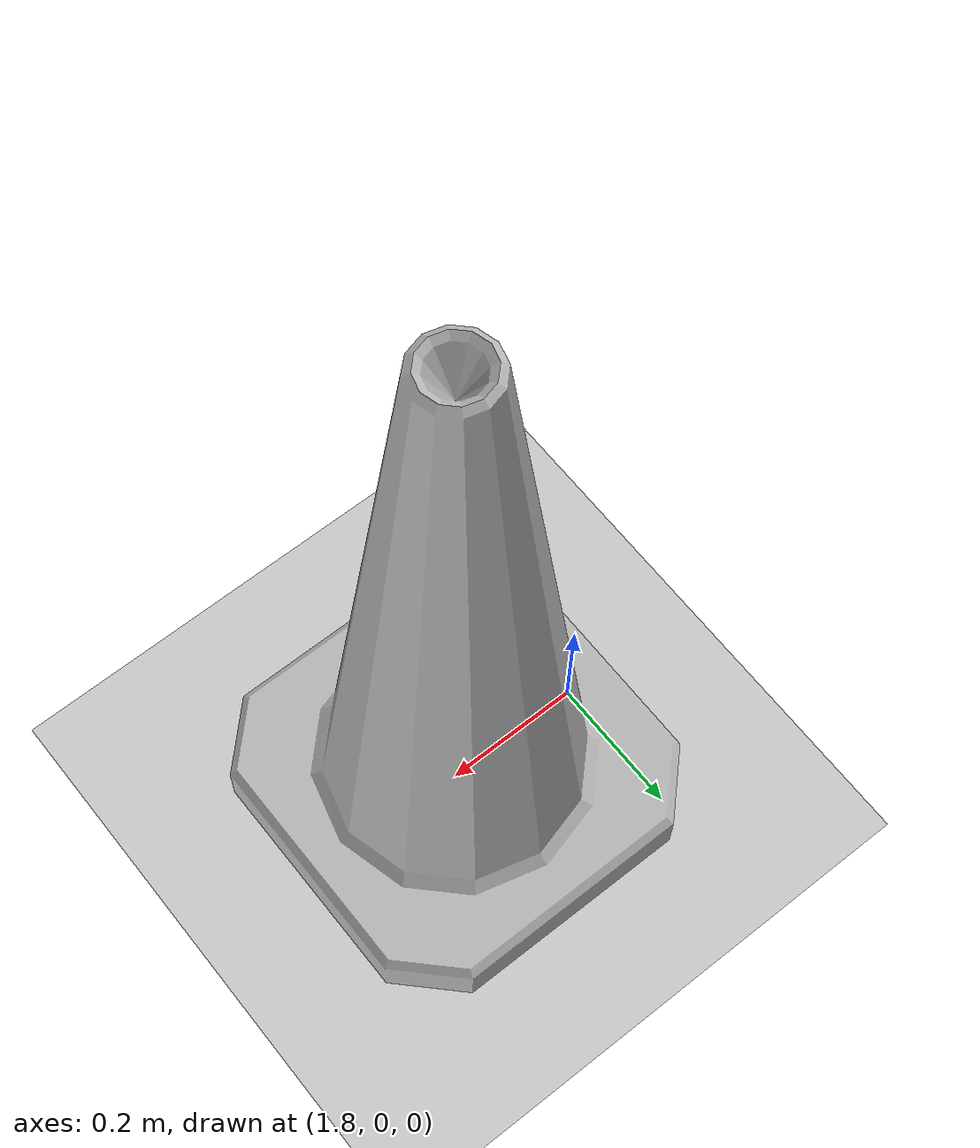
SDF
<?xml version="1.0" ?>
<sdf version="1.5">
  <world name="default">
    <include>
      <uri>model://ground_plane</uri>
    </include>
    <include>
      <uri>model://sun</uri>
    </include>

    <include>
      <pose>2 0 0 0 0 0</pose>
      <uri>model://construction_cone</uri>
    </include>
  </world>
</sdf>

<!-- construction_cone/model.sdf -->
<sdf version="1.5">
  <model name="Construction Cone">
    <link name="link">
      <collision name="collision">
        <geometry>
          <mesh>
            <scale>10 10 10</scale>
            <uri>file://isr-testbed/construction_cone/meshes/construction_cone.dae</uri>
          </mesh>
        </geometry>
      </collision>
      <visual name="visual">
        <geometry>
          <mesh>
            <scale>10 10 10</scale>
            <uri>file://isr-testbed/construction_cone/meshes/construction_cone.dae</uri>
          </mesh>
        </geometry>
      </visual>
    </link>
  </model>
</sdf>
